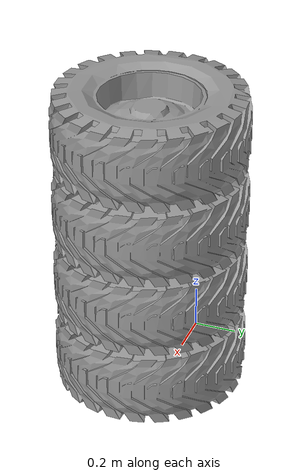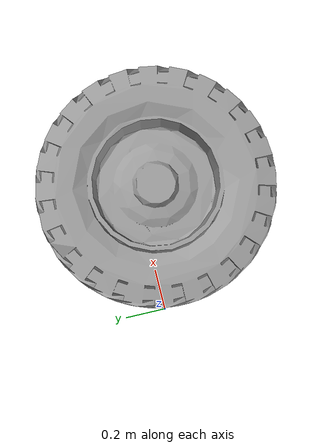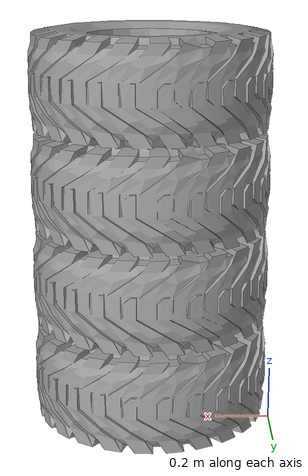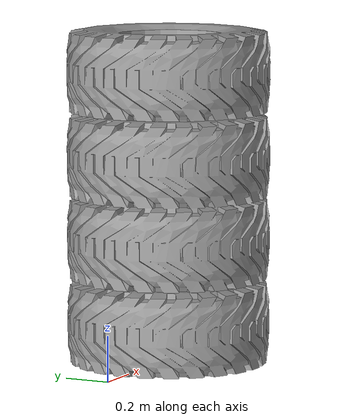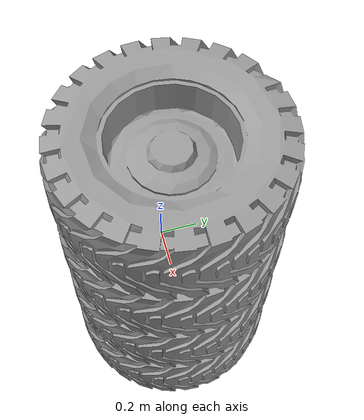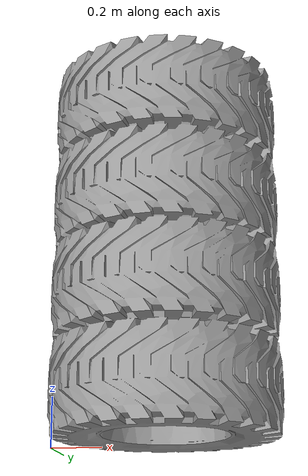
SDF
<?xml version="1.0" ?>
<sdf version="1.5">
  <model name="tyre_stack">

    <pose>0 0 0  0 0 0</pose>

    <static>true</static>
    <link name="link">
      <inertial>
        <mass>97.976</mass>
        <inertia>
          <ixx>1</ixx>
          <ixy>0</ixy>
          <ixz>0</ixz>
          <iyy>1</iyy>
          <iyz>0</iyz>
          <izz>1</izz>
        </inertia>
      </inertial>

      <collision name="collision">
	    <pose>0 0 .1  0 0 0</pose>
        <geometry>
          <box>
            <size>.2 .2 .2</size>
          </box>
        </geometry>
      </collision>

      <visual name="visual">
        <geometry>
          <mesh>
            <uri>model://tyre_stack/meshes/tyre_stack.stl</uri>
          </mesh>
        </geometry>
        <material>
           <script>
  <name>Gazebo/Grey</name>
  </script>
        </material>
      </visual>
    </link>
  </model>
</sdf>
